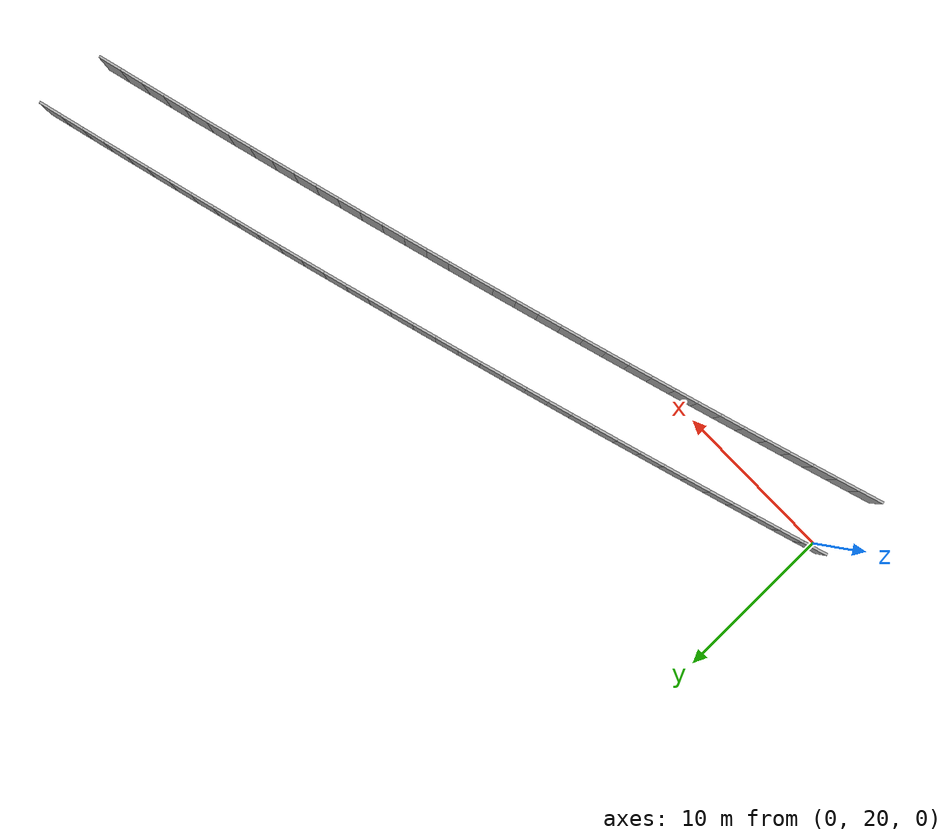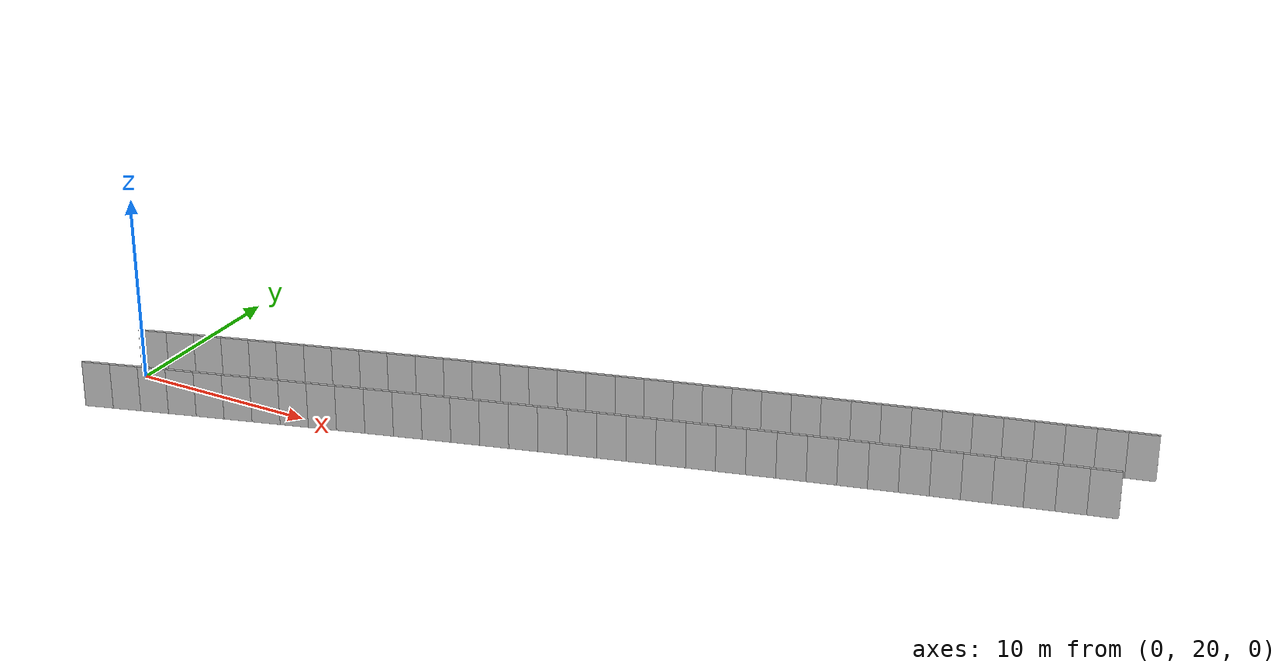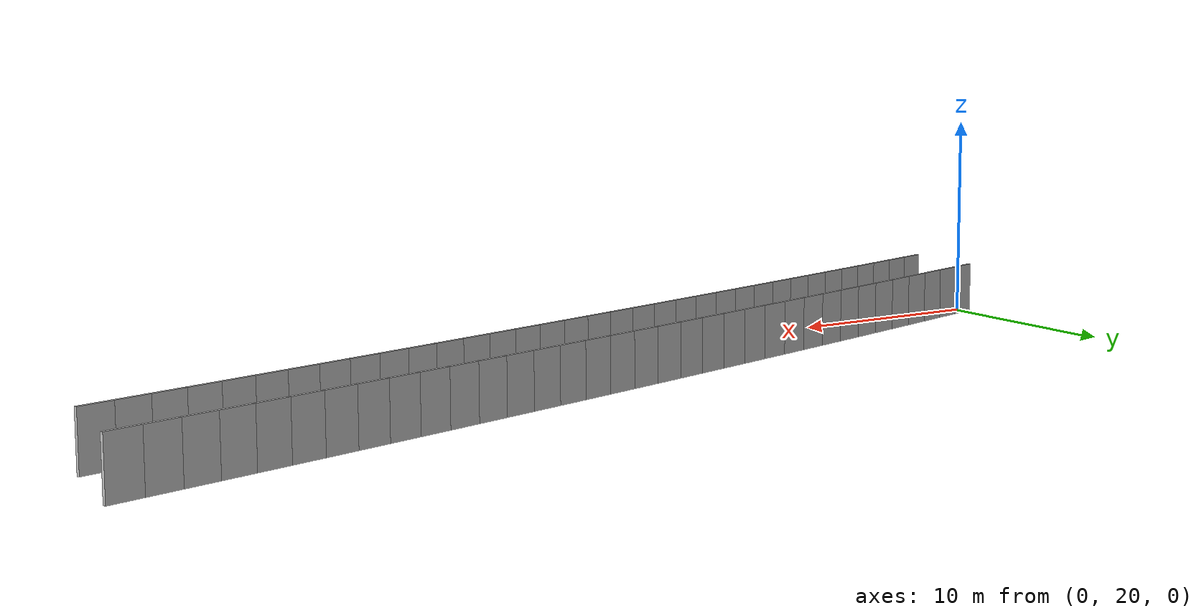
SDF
<?xml version="1.0" ?>
<sdf version="1.6">
  <model name="sps_1846">
    <pose frame="">0 0 0 0 -0 0</pose>
    <static>1</static>
    <self_collide>0</self_collide>
    <allow_auto_disable>0</allow_auto_disable>
    <link name="Wall3021">
      <kinematic>0</kinematic>
      <gravity>1</gravity>
      <self_collide>0</self_collide>
      <collision name="collision">
        <geometry>
          <box>
            <size>1.49661 0.15 2.5</size>
          </box>
        </geometry>
        <pose frame="">0 0 0 0 -0 0</pose>
      </collision>
      <visual name="visual">
        <geometry>
          <box>
            <size>1.49661 0.15 2.5</size>
          </box>
        </geometry>
        <pose frame="">0 0 0 0 -0 0</pose>
        <cast_shadows>1</cast_shadows>
        <transparency>0.0</transparency>
      </visual>
      <pose frame="">49.0014 30.0258 1.25 0 0 -2.89191</pose>
    </link>
    <link name="Wall3022">
      <kinematic>0</kinematic>
      <gravity>1</gravity>
      <self_collide>0</self_collide>
      <collision name="collision">
        <geometry>
          <box>
            <size>1.49638 0.15 2.5</size>
          </box>
        </geometry>
        <pose frame="">0 0 0 0 -0 0</pose>
      </collision>
      <visual name="visual">
        <geometry>
          <box>
            <size>1.49638 0.15 2.5</size>
          </box>
        </geometry>
        <pose frame="">0 0 0 0 -0 0</pose>
        <cast_shadows>1</cast_shadows>
        <transparency>0.0</transparency>
      </visual>
      <pose frame="">47.5516 29.6549 1.25 0 0 -2.89035</pose>
    </link>
    <link name="Wall3023">
      <kinematic>0</kinematic>
      <gravity>1</gravity>
      <self_collide>0</self_collide>
      <collision name="collision">
        <geometry>
          <box>
            <size>1.49662 0.15 2.5</size>
          </box>
        </geometry>
        <pose frame="">0 0 0 0 -0 0</pose>
      </collision>
      <visual name="visual">
        <geometry>
          <box>
            <size>1.49662 0.15 2.5</size>
          </box>
        </geometry>
        <pose frame="">0 0 0 0 -0 0</pose>
        <cast_shadows>1</cast_shadows>
        <transparency>0.0</transparency>
      </visual>
      <pose frame="">46.1023 29.2817 1.25 0 0 -2.88875</pose>
    </link>
    <link name="Wall3024">
      <kinematic>0</kinematic>
      <gravity>1</gravity>
      <self_collide>0</self_collide>
      <collision name="collision">
        <geometry>
          <box>
            <size>1.49634 0.15 2.5</size>
          </box>
        </geometry>
        <pose frame="">0 0 0 0 -0 0</pose>
      </collision>
      <visual name="visual">
        <geometry>
          <box>
            <size>1.49634 0.15 2.5</size>
          </box>
        </geometry>
        <pose frame="">0 0 0 0 -0 0</pose>
        <cast_shadows>1</cast_shadows>
        <transparency>0.0</transparency>
      </visual>
      <pose frame="">44.6537 28.9062 1.25 0 0 -2.88719</pose>
    </link>
    <link name="Wall3025">
      <kinematic>0</kinematic>
      <gravity>1</gravity>
      <self_collide>0</self_collide>
      <collision name="collision">
        <geometry>
          <box>
            <size>1.49661 0.15 2.5</size>
          </box>
        </geometry>
        <pose frame="">0 0 0 0 -0 0</pose>
      </collision>
      <visual name="visual">
        <geometry>
          <box>
            <size>1.49661 0.15 2.5</size>
          </box>
        </geometry>
        <pose frame="">0 0 0 0 -0 0</pose>
        <cast_shadows>1</cast_shadows>
        <transparency>0.0</transparency>
      </visual>
      <pose frame="">43.2057 28.5284 1.25 0 0 -2.88555</pose>
    </link>
    <link name="Wall3026">
      <kinematic>0</kinematic>
      <gravity>1</gravity>
      <self_collide>0</self_collide>
      <collision name="collision">
        <geometry>
          <box>
            <size>1.49656 0.15 2.5</size>
          </box>
        </geometry>
        <pose frame="">0 0 0 0 -0 0</pose>
      </collision>
      <visual name="visual">
        <geometry>
          <box>
            <size>1.49656 0.15 2.5</size>
          </box>
        </geometry>
        <pose frame="">0 0 0 0 -0 0</pose>
        <cast_shadows>1</cast_shadows>
        <transparency>0.0</transparency>
      </visual>
      <pose frame="">41.7582 28.1483 1.25 0 0 -2.88406</pose>
    </link>
    <link name="Wall3027">
      <kinematic>0</kinematic>
      <gravity>1</gravity>
      <self_collide>0</self_collide>
      <collision name="collision">
        <geometry>
          <box>
            <size>1.49659 0.15 2.5</size>
          </box>
        </geometry>
        <pose frame="">0 0 0 0 -0 0</pose>
      </collision>
      <visual name="visual">
        <geometry>
          <box>
            <size>1.49659 0.15 2.5</size>
          </box>
        </geometry>
        <pose frame="">0 0 0 0 -0 0</pose>
        <cast_shadows>1</cast_shadows>
        <transparency>0.0</transparency>
      </visual>
      <pose frame="">40.3113 27.7659 1.25 0 0 -2.88238</pose>
    </link>
    <link name="Wall3028">
      <kinematic>0</kinematic>
      <gravity>1</gravity>
      <self_collide>0</self_collide>
      <collision name="collision">
        <geometry>
          <box>
            <size>1.49639 0.15 2.5</size>
          </box>
        </geometry>
        <pose frame="">0 0 0 0 -0 0</pose>
      </collision>
      <visual name="visual">
        <geometry>
          <box>
            <size>1.49639 0.15 2.5</size>
          </box>
        </geometry>
        <pose frame="">0 0 0 0 -0 0</pose>
        <cast_shadows>1</cast_shadows>
        <transparency>0.0</transparency>
      </visual>
      <pose frame="">38.8651 27.3812 1.25 0 0 -2.88082</pose>
    </link>
    <link name="Wall3029">
      <kinematic>0</kinematic>
      <gravity>1</gravity>
      <self_collide>0</self_collide>
      <collision name="collision">
        <geometry>
          <box>
            <size>1.49655 0.15 2.5</size>
          </box>
        </geometry>
        <pose frame="">0 0 0 0 -0 0</pose>
      </collision>
      <visual name="visual">
        <geometry>
          <box>
            <size>1.49655 0.15 2.5</size>
          </box>
        </geometry>
        <pose frame="">0 0 0 0 -0 0</pose>
        <cast_shadows>1</cast_shadows>
        <transparency>0.0</transparency>
      </visual>
      <pose frame="">37.4195 26.9943 1.25 0 0 -2.87933</pose>
    </link>
    <link name="Wall3030">
      <kinematic>0</kinematic>
      <gravity>1</gravity>
      <self_collide>0</self_collide>
      <collision name="collision">
        <geometry>
          <box>
            <size>1.49641 0.15 2.5</size>
          </box>
        </geometry>
        <pose frame="">0 0 0 0 -0 0</pose>
      </collision>
      <visual name="visual">
        <geometry>
          <box>
            <size>1.49641 0.15 2.5</size>
          </box>
        </geometry>
        <pose frame="">0 0 0 0 -0 0</pose>
        <cast_shadows>1</cast_shadows>
        <transparency>0.0</transparency>
      </visual>
      <pose frame="">35.9746 26.6051 1.25 0 0 -2.87762</pose>
    </link>
    <link name="Wall3031">
      <kinematic>0</kinematic>
      <gravity>1</gravity>
      <self_collide>0</self_collide>
      <collision name="collision">
        <geometry>
          <box>
            <size>1.49644 0.15 2.5</size>
          </box>
        </geometry>
        <pose frame="">0 0 0 0 -0 0</pose>
      </collision>
      <visual name="visual">
        <geometry>
          <box>
            <size>1.49644 0.15 2.5</size>
          </box>
        </geometry>
        <pose frame="">0 0 0 0 -0 0</pose>
        <cast_shadows>1</cast_shadows>
        <transparency>0.0</transparency>
      </visual>
      <pose frame="">34.5303 26.2136 1.25 0 0 -2.87615</pose>
    </link>
    <link name="Wall3032">
      <kinematic>0</kinematic>
      <gravity>1</gravity>
      <self_collide>0</self_collide>
      <collision name="collision">
        <geometry>
          <box>
            <size>1.4965 0.15 2.5</size>
          </box>
        </geometry>
        <pose frame="">0 0 0 0 -0 0</pose>
      </collision>
      <visual name="visual">
        <geometry>
          <box>
            <size>1.4965 0.15 2.5</size>
          </box>
        </geometry>
        <pose frame="">0 0 0 0 -0 0</pose>
        <cast_shadows>1</cast_shadows>
        <transparency>0.0</transparency>
      </visual>
      <pose frame="">33.0865 25.8198 1.25 0 0 -2.87446</pose>
    </link>
    <link name="Wall3033">
      <kinematic>0</kinematic>
      <gravity>1</gravity>
      <self_collide>0</self_collide>
      <collision name="collision">
        <geometry>
          <box>
            <size>1.49672 0.15 2.5</size>
          </box>
        </geometry>
        <pose frame="">0 0 0 0 -0 0</pose>
      </collision>
      <visual name="visual">
        <geometry>
          <box>
            <size>1.49672 0.15 2.5</size>
          </box>
        </geometry>
        <pose frame="">0 0 0 0 -0 0</pose>
        <cast_shadows>1</cast_shadows>
        <transparency>0.0</transparency>
      </visual>
      <pose frame="">31.6433 25.4236 1.25 0 0 -2.87285</pose>
    </link>
    <link name="Wall3034">
      <kinematic>0</kinematic>
      <gravity>1</gravity>
      <self_collide>0</self_collide>
      <collision name="collision">
        <geometry>
          <box>
            <size>1.49654 0.15 2.5</size>
          </box>
        </geometry>
        <pose frame="">0 0 0 0 -0 0</pose>
      </collision>
      <visual name="visual">
        <geometry>
          <box>
            <size>1.49654 0.15 2.5</size>
          </box>
        </geometry>
        <pose frame="">0 0 0 0 -0 0</pose>
        <cast_shadows>1</cast_shadows>
        <transparency>0.0</transparency>
      </visual>
      <pose frame="">30.2007 25.0251 1.25 0 0 -2.8713</pose>
    </link>
    <link name="Wall3035">
      <kinematic>0</kinematic>
      <gravity>1</gravity>
      <self_collide>0</self_collide>
      <collision name="collision">
        <geometry>
          <box>
            <size>1.49636 0.15 2.5</size>
          </box>
        </geometry>
        <pose frame="">0 0 0 0 -0 0</pose>
      </collision>
      <visual name="visual">
        <geometry>
          <box>
            <size>1.49636 0.15 2.5</size>
          </box>
        </geometry>
        <pose frame="">0 0 0 0 -0 0</pose>
        <cast_shadows>1</cast_shadows>
        <transparency>0.0</transparency>
      </visual>
      <pose frame="">28.7589 24.6244 1.25 0 0 -2.86974</pose>
    </link>
    <link name="Wall3036">
      <kinematic>0</kinematic>
      <gravity>1</gravity>
      <self_collide>0</self_collide>
      <collision name="collision">
        <geometry>
          <box>
            <size>1.49649 0.15 2.5</size>
          </box>
        </geometry>
        <pose frame="">0 0 0 0 -0 0</pose>
      </collision>
      <visual name="visual">
        <geometry>
          <box>
            <size>1.49649 0.15 2.5</size>
          </box>
        </geometry>
        <pose frame="">0 0 0 0 -0 0</pose>
        <cast_shadows>1</cast_shadows>
        <transparency>0.0</transparency>
      </visual>
      <pose frame="">27.3177 24.2216 1.25 0 0 -2.86837</pose>
    </link>
    <link name="Wall3037">
      <kinematic>0</kinematic>
      <gravity>1</gravity>
      <self_collide>0</self_collide>
      <collision name="collision">
        <geometry>
          <box>
            <size>1.49642 0.15 2.5</size>
          </box>
        </geometry>
        <pose frame="">0 0 0 0 -0 0</pose>
      </collision>
      <visual name="visual">
        <geometry>
          <box>
            <size>1.49642 0.15 2.5</size>
          </box>
        </geometry>
        <pose frame="">0 0 0 0 -0 0</pose>
        <cast_shadows>1</cast_shadows>
        <transparency>0.0</transparency>
      </visual>
      <pose frame="">25.8772 23.8165 1.25 0 0 -2.86658</pose>
    </link>
    <link name="Wall3038">
      <kinematic>0</kinematic>
      <gravity>1</gravity>
      <self_collide>0</self_collide>
      <collision name="collision">
        <geometry>
          <box>
            <size>1.49651 0.15 2.5</size>
          </box>
        </geometry>
        <pose frame="">0 0 0 0 -0 0</pose>
      </collision>
      <visual name="visual">
        <geometry>
          <box>
            <size>1.49651 0.15 2.5</size>
          </box>
        </geometry>
        <pose frame="">0 0 0 0 -0 0</pose>
        <cast_shadows>1</cast_shadows>
        <transparency>0.0</transparency>
      </visual>
      <pose frame="">24.4372 23.409 1.25 0 0 -2.86502</pose>
    </link>
    <link name="Wall3039">
      <kinematic>0</kinematic>
      <gravity>1</gravity>
      <self_collide>0</self_collide>
      <collision name="collision">
        <geometry>
          <box>
            <size>1.4965 0.15 2.5</size>
          </box>
        </geometry>
        <pose frame="">0 0 0 0 -0 0</pose>
      </collision>
      <visual name="visual">
        <geometry>
          <box>
            <size>1.4965 0.15 2.5</size>
          </box>
        </geometry>
        <pose frame="">0 0 0 0 -0 0</pose>
        <cast_shadows>1</cast_shadows>
        <transparency>0.0</transparency>
      </visual>
      <pose frame="">22.9979 22.9992 1.25 0 0 -2.86341</pose>
    </link>
    <link name="Wall3040">
      <kinematic>0</kinematic>
      <gravity>1</gravity>
      <self_collide>0</self_collide>
      <collision name="collision">
        <geometry>
          <box>
            <size>1.49641 0.15 2.5</size>
          </box>
        </geometry>
        <pose frame="">0 0 0 0 -0 0</pose>
      </collision>
      <visual name="visual">
        <geometry>
          <box>
            <size>1.49641 0.15 2.5</size>
          </box>
        </geometry>
        <pose frame="">0 0 0 0 -0 0</pose>
        <cast_shadows>1</cast_shadows>
        <transparency>0.0</transparency>
      </visual>
      <pose frame="">21.5593 22.5871 1.25 0 0 -2.86183</pose>
    </link>
    <link name="Wall3041">
      <kinematic>0</kinematic>
      <gravity>1</gravity>
      <self_collide>0</self_collide>
      <collision name="collision">
        <geometry>
          <box>
            <size>1.49666 0.15 2.5</size>
          </box>
        </geometry>
        <pose frame="">0 0 0 0 -0 0</pose>
      </collision>
      <visual name="visual">
        <geometry>
          <box>
            <size>1.49666 0.15 2.5</size>
          </box>
        </geometry>
        <pose frame="">0 0 0 0 -0 0</pose>
        <cast_shadows>1</cast_shadows>
        <transparency>0.0</transparency>
      </visual>
      <pose frame="">20.1213 22.1727 1.25 0 0 -2.86022</pose>
    </link>
    <link name="Wall3042">
      <kinematic>0</kinematic>
      <gravity>1</gravity>
      <self_collide>0</self_collide>
      <collision name="collision">
        <geometry>
          <box>
            <size>1.49647 0.15 2.5</size>
          </box>
        </geometry>
        <pose frame="">0 0 0 0 -0 0</pose>
      </collision>
      <visual name="visual">
        <geometry>
          <box>
            <size>1.49647 0.15 2.5</size>
          </box>
        </geometry>
        <pose frame="">0 0 0 0 -0 0</pose>
        <cast_shadows>1</cast_shadows>
        <transparency>0.0</transparency>
      </visual>
      <pose frame="">18.684 21.756 1.25 0 0 -2.85861</pose>
    </link>
    <link name="Wall3043">
      <kinematic>0</kinematic>
      <gravity>1</gravity>
      <self_collide>0</self_collide>
      <collision name="collision">
        <geometry>
          <box>
            <size>1.49642 0.15 2.5</size>
          </box>
        </geometry>
        <pose frame="">0 0 0 0 -0 0</pose>
      </collision>
      <visual name="visual">
        <geometry>
          <box>
            <size>1.49642 0.15 2.5</size>
          </box>
        </geometry>
        <pose frame="">0 0 0 0 -0 0</pose>
        <cast_shadows>1</cast_shadows>
        <transparency>0.0</transparency>
      </visual>
      <pose frame="">17.2474 21.337 1.25 0 0 -2.85698</pose>
    </link>
    <link name="Wall3044">
      <kinematic>0</kinematic>
      <gravity>1</gravity>
      <self_collide>0</self_collide>
      <collision name="collision">
        <geometry>
          <box>
            <size>1.49664 0.15 2.5</size>
          </box>
        </geometry>
        <pose frame="">0 0 0 0 -0 0</pose>
      </collision>
      <visual name="visual">
        <geometry>
          <box>
            <size>1.49664 0.15 2.5</size>
          </box>
        </geometry>
        <pose frame="">0 0 0 0 -0 0</pose>
        <cast_shadows>1</cast_shadows>
        <transparency>0.0</transparency>
      </visual>
      <pose frame="">15.8114 20.9157 1.25 0 0 -2.85546</pose>
    </link>
    <link name="Wall3045">
      <kinematic>0</kinematic>
      <gravity>1</gravity>
      <self_collide>0</self_collide>
      <collision name="collision">
        <geometry>
          <box>
            <size>1.49649 0.15 2.5</size>
          </box>
        </geometry>
        <pose frame="">0 0 0 0 -0 0</pose>
      </collision>
      <visual name="visual">
        <geometry>
          <box>
            <size>1.49649 0.15 2.5</size>
          </box>
        </geometry>
        <pose frame="">0 0 0 0 -0 0</pose>
        <cast_shadows>1</cast_shadows>
        <transparency>0.0</transparency>
      </visual>
      <pose frame="">14.376 20.4922 1.25 0 0 -2.85394</pose>
    </link>
    <link name="Wall3046">
      <kinematic>0</kinematic>
      <gravity>1</gravity>
      <self_collide>0</self_collide>
      <collision name="collision">
        <geometry>
          <box>
            <size>1.49637 0.15 2.5</size>
          </box>
        </geometry>
        <pose frame="">0 0 0 0 -0 0</pose>
      </collision>
      <visual name="visual">
        <geometry>
          <box>
            <size>1.49637 0.15 2.5</size>
          </box>
        </geometry>
        <pose frame="">0 0 0 0 -0 0</pose>
        <cast_shadows>1</cast_shadows>
        <transparency>0.0</transparency>
      </visual>
      <pose frame="">12.9414 20.0665 1.25 0 0 -2.85234</pose>
    </link>
    <link name="Wall3047">
      <kinematic>0</kinematic>
      <gravity>1</gravity>
      <self_collide>0</self_collide>
      <collision name="collision">
        <geometry>
          <box>
            <size>1.49641 0.15 2.5</size>
          </box>
        </geometry>
        <pose frame="">0 0 0 0 -0 0</pose>
      </collision>
      <visual name="visual">
        <geometry>
          <box>
            <size>1.49641 0.15 2.5</size>
          </box>
        </geometry>
        <pose frame="">0 0 0 0 -0 0</pose>
        <cast_shadows>1</cast_shadows>
        <transparency>0.0</transparency>
      </visual>
      <pose frame="">11.5075 19.6386 1.25 0 0 -2.85082</pose>
    </link>
    <link name="Wall3048">
      <kinematic>0</kinematic>
      <gravity>1</gravity>
      <self_collide>0</self_collide>
      <collision name="collision">
        <geometry>
          <box>
            <size>1.49662 0.15 2.5</size>
          </box>
        </geometry>
        <pose frame="">0 0 0 0 -0 0</pose>
      </collision>
      <visual name="visual">
        <geometry>
          <box>
            <size>1.49662 0.15 2.5</size>
          </box>
        </geometry>
        <pose frame="">0 0 0 0 -0 0</pose>
        <cast_shadows>1</cast_shadows>
        <transparency>0.0</transparency>
      </visual>
      <pose frame="">10.0741 19.2083 1.25 0 0 -2.84907</pose>
    </link>
    <link name="Wall3049">
      <kinematic>0</kinematic>
      <gravity>1</gravity>
      <self_collide>0</self_collide>
      <collision name="collision">
        <geometry>
          <box>
            <size>1.49639 0.15 2.5</size>
          </box>
        </geometry>
        <pose frame="">0 0 0 0 -0 0</pose>
      </collision>
      <visual name="visual">
        <geometry>
          <box>
            <size>1.49639 0.15 2.5</size>
          </box>
        </geometry>
        <pose frame="">0 0 0 0 -0 0</pose>
        <cast_shadows>1</cast_shadows>
        <transparency>0.0</transparency>
      </visual>
      <pose frame="">8.64153 18.7757 1.25 0 0 -2.84762</pose>
    </link>
    <link name="Wall3050">
      <kinematic>0</kinematic>
      <gravity>1</gravity>
      <self_collide>0</self_collide>
      <collision name="collision">
        <geometry>
          <box>
            <size>1.49651 0.15 2.5</size>
          </box>
        </geometry>
        <pose frame="">0 0 0 0 -0 0</pose>
      </collision>
      <visual name="visual">
        <geometry>
          <box>
            <size>1.49651 0.15 2.5</size>
          </box>
        </geometry>
        <pose frame="">0 0 0 0 -0 0</pose>
        <cast_shadows>1</cast_shadows>
        <transparency>0.0</transparency>
      </visual>
      <pose frame="">7.20965 18.3409 1.25 0 0 -2.84594</pose>
    </link>
    <link name="Wall3051">
      <kinematic>0</kinematic>
      <gravity>1</gravity>
      <self_collide>0</self_collide>
      <collision name="collision">
        <geometry>
          <box>
            <size>1.49661 0.15 2.5</size>
          </box>
        </geometry>
        <pose frame="">0 0 0 0 -0 0</pose>
      </collision>
      <visual name="visual">
        <geometry>
          <box>
            <size>1.49661 0.15 2.5</size>
          </box>
        </geometry>
        <pose frame="">0 0 0 0 -0 0</pose>
        <cast_shadows>1</cast_shadows>
        <transparency>0.0</transparency>
      </visual>
      <pose frame="">5.77834 17.9038 1.25 0 0 -2.84446</pose>
    </link>
    <link name="Wall3052">
      <kinematic>0</kinematic>
      <gravity>1</gravity>
      <self_collide>0</self_collide>
      <collision name="collision">
        <geometry>
          <box>
            <size>1.49638 0.15 2.5</size>
          </box>
        </geometry>
        <pose frame="">0 0 0 0 -0 0</pose>
      </collision>
      <visual name="visual">
        <geometry>
          <box>
            <size>1.49638 0.15 2.5</size>
          </box>
        </geometry>
        <pose frame="">0 0 0 0 -0 0</pose>
        <cast_shadows>1</cast_shadows>
        <transparency>0.0</transparency>
      </visual>
      <pose frame="">4.34774 17.4646 1.25 0 0 -2.84301</pose>
    </link>
    <link name="Wall3053">
      <kinematic>0</kinematic>
      <gravity>1</gravity>
      <self_collide>0</self_collide>
      <collision name="collision">
        <geometry>
          <box>
            <size>1.49658 0.15 2.5</size>
          </box>
        </geometry>
        <pose frame="">0 0 0 0 -0 0</pose>
      </collision>
      <visual name="visual">
        <geometry>
          <box>
            <size>1.49658 0.15 2.5</size>
          </box>
        </geometry>
        <pose frame="">0 0 0 0 -0 0</pose>
        <cast_shadows>1</cast_shadows>
        <transparency>0.0</transparency>
      </visual>
      <pose frame="">2.91787 17.0231 1.25 0 0 -2.84121</pose>
    </link>
    <link name="Wall3054">
      <kinematic>0</kinematic>
      <gravity>1</gravity>
      <self_collide>0</self_collide>
      <collision name="collision">
        <geometry>
          <box>
            <size>1.49653 0.15 2.5</size>
          </box>
        </geometry>
        <pose frame="">0 0 0 0 -0 0</pose>
      </collision>
      <visual name="visual">
        <geometry>
          <box>
            <size>1.49653 0.15 2.5</size>
          </box>
        </geometry>
        <pose frame="">0 0 0 0 -0 0</pose>
        <cast_shadows>1</cast_shadows>
        <transparency>0.0</transparency>
      </visual>
      <pose frame="">1.48867 16.5792 1.25 0 0 -2.83967</pose>
    </link>
    <link name="Wall3055">
      <kinematic>0</kinematic>
      <gravity>1</gravity>
      <self_collide>0</self_collide>
      <collision name="collision">
        <geometry>
          <box>
            <size>1.49642 0.15 2.5</size>
          </box>
        </geometry>
        <pose frame="">0 0 0 0 -0 0</pose>
      </collision>
      <visual name="visual">
        <geometry>
          <box>
            <size>1.49642 0.15 2.5</size>
          </box>
        </geometry>
        <pose frame="">0 0 0 0 -0 0</pose>
        <cast_shadows>1</cast_shadows>
        <transparency>0.0</transparency>
      </visual>
      <pose frame="">0.0602639 16.133 1.25 0 0 -2.83798</pose>
    </link>
    <link name="Wall5631">
      <kinematic>0</kinematic>
      <gravity>1</gravity>
      <self_collide>0</self_collide>
      <collision name="collision">
        <geometry>
          <box>
            <size>1.50299 0.15 2.5</size>
          </box>
        </geometry>
        <pose frame="">0 0 0 0 -0 0</pose>
      </collision>
      <visual name="visual">
        <geometry>
          <box>
            <size>1.50299 0.15 2.5</size>
          </box>
        </geometry>
        <pose frame="">0 0 0 0 -0 0</pose>
        <cast_shadows>1</cast_shadows>
        <transparency>0.0</transparency>
      </visual>
      <pose frame="">49.4292 34.4057 1.25 0 0 -2.89366</pose>
    </link>
    <link name="Wall5632">
      <kinematic>0</kinematic>
      <gravity>1</gravity>
      <self_collide>0</self_collide>
      <collision name="collision">
        <geometry>
          <box>
            <size>1.50315 0.15 2.5</size>
          </box>
        </geometry>
        <pose frame="">0 0 0 0 -0 0</pose>
      </collision>
      <visual name="visual">
        <geometry>
          <box>
            <size>1.50315 0.15 2.5</size>
          </box>
        </geometry>
        <pose frame="">0 0 0 0 -0 0</pose>
        <cast_shadows>1</cast_shadows>
        <transparency>0.0</transparency>
      </visual>
      <pose frame="">47.9723 34.0357 1.25 0 0 -2.89209</pose>
    </link>
    <link name="Wall5633">
      <kinematic>0</kinematic>
      <gravity>1</gravity>
      <self_collide>0</self_collide>
      <collision name="collision">
        <geometry>
          <box>
            <size>1.50304 0.15 2.5</size>
          </box>
        </geometry>
        <pose frame="">0 0 0 0 -0 0</pose>
      </collision>
      <visual name="visual">
        <geometry>
          <box>
            <size>1.50304 0.15 2.5</size>
          </box>
        </geometry>
        <pose frame="">0 0 0 0 -0 0</pose>
        <cast_shadows>1</cast_shadows>
        <transparency>0.0</transparency>
      </visual>
      <pose frame="">46.5161 33.6632 1.25 0 0 -2.89023</pose>
    </link>
    <link name="Wall5634">
      <kinematic>0</kinematic>
      <gravity>1</gravity>
      <self_collide>0</self_collide>
      <collision name="collision">
        <geometry>
          <box>
            <size>1.50299 0.15 2.5</size>
          </box>
        </geometry>
        <pose frame="">0 0 0 0 -0 0</pose>
      </collision>
      <visual name="visual">
        <geometry>
          <box>
            <size>1.50299 0.15 2.5</size>
          </box>
        </geometry>
        <pose frame="">0 0 0 0 -0 0</pose>
        <cast_shadows>1</cast_shadows>
        <transparency>0.0</transparency>
      </visual>
      <pose frame="">45.0606 33.2883 1.25 0 0 -2.88875</pose>
    </link>
    <link name="Wall5635">
      <kinematic>0</kinematic>
      <gravity>1</gravity>
      <self_collide>0</self_collide>
      <collision name="collision">
        <geometry>
          <box>
            <size>1.50318 0.15 2.5</size>
          </box>
        </geometry>
        <pose frame="">0 0 0 0 -0 0</pose>
      </collision>
      <visual name="visual">
        <geometry>
          <box>
            <size>1.50318 0.15 2.5</size>
          </box>
        </geometry>
        <pose frame="">0 0 0 0 -0 0</pose>
        <cast_shadows>1</cast_shadows>
        <transparency>0.0</transparency>
      </visual>
      <pose frame="">43.6056 32.9111 1.25 0 0 -2.88711</pose>
    </link>
    <link name="Wall5636">
      <kinematic>0</kinematic>
      <gravity>1</gravity>
      <self_collide>0</self_collide>
      <collision name="collision">
        <geometry>
          <box>
            <size>1.50319 0.15 2.5</size>
          </box>
        </geometry>
        <pose frame="">0 0 0 0 -0 0</pose>
      </collision>
      <visual name="visual">
        <geometry>
          <box>
            <size>1.50319 0.15 2.5</size>
          </box>
        </geometry>
        <pose frame="">0 0 0 0 -0 0</pose>
        <cast_shadows>1</cast_shadows>
        <transparency>0.0</transparency>
      </visual>
      <pose frame="">42.1511 32.5316 1.25 0 0 -2.88564</pose>
    </link>
    <link name="Wall5637">
      <kinematic>0</kinematic>
      <gravity>1</gravity>
      <self_collide>0</self_collide>
      <collision name="collision">
        <geometry>
          <box>
            <size>1.503 0.15 2.5</size>
          </box>
        </geometry>
        <pose frame="">0 0 0 0 -0 0</pose>
      </collision>
      <visual name="visual">
        <geometry>
          <box>
            <size>1.503 0.15 2.5</size>
          </box>
        </geometry>
        <pose frame="">0 0 0 0 -0 0</pose>
        <cast_shadows>1</cast_shadows>
        <transparency>0.0</transparency>
      </visual>
      <pose frame="">40.6973 32.1498 1.25 0 0 -2.88389</pose>
    </link>
    <link name="Wall5638">
      <kinematic>0</kinematic>
      <gravity>1</gravity>
      <self_collide>0</self_collide>
      <collision name="collision">
        <geometry>
          <box>
            <size>1.50302 0.15 2.5</size>
          </box>
        </geometry>
        <pose frame="">0 0 0 0 -0 0</pose>
      </collision>
      <visual name="visual">
        <geometry>
          <box>
            <size>1.50302 0.15 2.5</size>
          </box>
        </geometry>
        <pose frame="">0 0 0 0 -0 0</pose>
        <cast_shadows>1</cast_shadows>
        <transparency>0.0</transparency>
      </visual>
      <pose frame="">39.2443 31.7657 1.25 0 0 -2.88242</pose>
    </link>
    <link name="Wall5639">
      <kinematic>0</kinematic>
      <gravity>1</gravity>
      <self_collide>0</self_collide>
      <collision name="collision">
        <geometry>
          <box>
            <size>1.50304 0.15 2.5</size>
          </box>
        </geometry>
        <pose frame="">0 0 0 0 -0 0</pose>
      </collision>
      <visual name="visual">
        <geometry>
          <box>
            <size>1.50304 0.15 2.5</size>
          </box>
        </geometry>
        <pose frame="">0 0 0 0 -0 0</pose>
        <cast_shadows>1</cast_shadows>
        <transparency>0.0</transparency>
      </visual>
      <pose frame="">37.7917 31.3793 1.25 0 0 -2.88079</pose>
    </link>
    <link name="Wall5640">
      <kinematic>0</kinematic>
      <gravity>1</gravity>
      <self_collide>0</self_collide>
      <collision name="collision">
        <geometry>
          <box>
            <size>1.50303 0.15 2.5</size>
          </box>
        </geometry>
        <pose frame="">0 0 0 0 -0 0</pose>
      </collision>
      <visual name="visual">
        <geometry>
          <box>
            <size>1.50303 0.15 2.5</size>
          </box>
        </geometry>
        <pose frame="">0 0 0 0 -0 0</pose>
        <cast_shadows>1</cast_shadows>
        <transparency>0.0</transparency>
      </visual>
      <pose frame="">36.3398 30.9906 1.25 0 0 -2.87923</pose>
    </link>
    <link name="Wall5641">
      <kinematic>0</kinematic>
      <gravity>1</gravity>
      <self_collide>0</self_collide>
      <collision name="collision">
        <geometry>
          <box>
            <size>1.50322 0.15 2.5</size>
          </box>
        </geometry>
        <pose frame="">0 0 0 0 -0 0</pose>
      </collision>
      <visual name="visual">
        <geometry>
          <box>
            <size>1.50322 0.15 2.5</size>
          </box>
        </geometry>
        <pose frame="">0 0 0 0 -0 0</pose>
        <cast_shadows>1</cast_shadows>
        <transparency>0.0</transparency>
      </visual>
      <pose frame="">34.8884 30.5996 1.25 0 0 -2.87767</pose>
    </link>
    <link name="Wall5642">
      <kinematic>0</kinematic>
      <gravity>1</gravity>
      <self_collide>0</self_collide>
      <collision name="collision">
        <geometry>
          <box>
            <size>1.50305 0.15 2.5</size>
          </box>
        </geometry>
        <pose frame="">0 0 0 0 -0 0</pose>
      </collision>
      <visual name="visual">
        <geometry>
          <box>
            <size>1.50305 0.15 2.5</size>
          </box>
        </geometry>
        <pose frame="">0 0 0 0 -0 0</pose>
        <cast_shadows>1</cast_shadows>
        <transparency>0.0</transparency>
      </visual>
      <pose frame="">33.4377 30.2063 1.25 0 0 -2.87608</pose>
    </link>
    <link name="Wall5643">
      <kinematic>0</kinematic>
      <gravity>1</gravity>
      <self_collide>0</self_collide>
      <collision name="collision">
        <geometry>
          <box>
            <size>1.50315 0.15 2.5</size>
          </box>
        </geometry>
        <pose frame="">0 0 0 0 -0 0</pose>
      </collision>
      <visual name="visual">
        <geometry>
          <box>
            <size>1.50315 0.15 2.5</size>
          </box>
        </geometry>
        <pose frame="">0 0 0 0 -0 0</pose>
        <cast_shadows>1</cast_shadows>
        <transparency>0.0</transparency>
      </visual>
      <pose frame="">31.9876 29.8107 1.25 0 0 -2.87445</pose>
    </link>
    <link name="Wall5644">
      <kinematic>0</kinematic>
      <gravity>1</gravity>
      <self_collide>0</self_collide>
      <collision name="collision">
        <geometry>
          <box>
            <size>1.50315 0.15 2.5</size>
          </box>
        </geometry>
        <pose frame="">0 0 0 0 -0 0</pose>
      </collision>
      <visual name="visual">
        <geometry>
          <box>
            <size>1.50315 0.15 2.5</size>
          </box>
        </geometry>
        <pose frame="">0 0 0 0 -0 0</pose>
        <cast_shadows>1</cast_shadows>
        <transparency>0.0</transparency>
      </visual>
      <pose frame="">30.538 29.4128 1.25 0 0 -2.8729</pose>
    </link>
    <link name="Wall5645">
      <kinematic>0</kinematic>
      <gravity>1</gravity>
      <self_collide>0</self_collide>
      <collision name="collision">
        <geometry>
          <box>
            <size>1.5029 0.15 2.5</size>
          </box>
        </geometry>
        <pose frame="">0 0 0 0 -0 0</pose>
      </collision>
      <visual name="visual">
        <geometry>
          <box>
            <size>1.5029 0.15 2.5</size>
          </box>
        </geometry>
        <pose frame="">0 0 0 0 -0 0</pose>
        <cast_shadows>1</cast_shadows>
        <transparency>0.0</transparency>
      </visual>
      <pose frame="">29.0893 29.0127 1.25 0 0 -2.87138</pose>
    </link>
    <link name="Wall5646">
      <kinematic>0</kinematic>
      <gravity>1</gravity>
      <self_collide>0</self_collide>
      <collision name="collision">
        <geometry>
          <box>
            <size>1.50309 0.15 2.5</size>
          </box>
        </geometry>
        <pose frame="">0 0 0 0 -0 0</pose>
      </collision>
      <visual name="visual">
        <geometry>
          <box>
            <size>1.50309 0.15 2.5</size>
          </box>
        </geometry>
        <pose frame="">0 0 0 0 -0 0</pose>
        <cast_shadows>1</cast_shadows>
        <transparency>0.0</transparency>
      </visual>
      <pose frame="">27.6411 28.6105 1.25 0 0 -2.87002</pose>
    </link>
    <link name="Wall5647">
      <kinematic>0</kinematic>
      <gravity>1</gravity>
      <self_collide>0</self_collide>
      <collision name="collision">
        <geometry>
          <box>
            <size>1.50308 0.15 2.5</size>
          </box>
        </geometry>
        <pose frame="">0 0 0 0 -0 0</pose>
      </collision>
      <visual name="visual">
        <geometry>
          <box>
            <size>1.50308 0.15 2.5</size>
          </box>
        </geometry>
        <pose frame="">0 0 0 0 -0 0</pose>
        <cast_shadows>1</cast_shadows>
        <transparency>0.0</transparency>
      </visual>
      <pose frame="">26.1935 28.2059 1.25 0 0 -2.86808</pose>
    </link>
    <link name="Wall5648">
      <kinematic>0</kinematic>
      <gravity>1</gravity>
      <self_collide>0</self_collide>
      <collision name="collision">
        <geometry>
          <box>
            <size>1.50309 0.15 2.5</size>
          </box>
        </geometry>
        <pose frame="">0 0 0 0 -0 0</pose>
      </collision>
      <visual name="visual">
        <geometry>
          <box>
            <size>1.50309 0.15 2.5</size>
          </box>
        </geometry>
        <pose frame="">0 0 0 0 -0 0</pose>
        <cast_shadows>1</cast_shadows>
        <transparency>0.0</transparency>
      </visual>
      <pose frame="">24.7466 27.7988 1.25 0 0 -2.86656</pose>
    </link>
    <link name="Wall5649">
      <kinematic>0</kinematic>
      <gravity>1</gravity>
      <self_collide>0</self_collide>
      <collision name="collision">
        <geometry>
          <box>
            <size>1.50315 0.15 2.5</size>
          </box>
        </geometry>
        <pose frame="">0 0 0 0 -0 0</pose>
      </collision>
      <visual name="visual">
        <geometry>
          <box>
            <size>1.50315 0.15 2.5</size>
          </box>
        </geometry>
        <pose frame="">0 0 0 0 -0 0</pose>
        <cast_shadows>1</cast_shadows>
        <transparency>0.0</transparency>
      </visual>
      <pose frame="">23.3003 27.3895 1.25 0 0 -2.86506</pose>
    </link>
    <link name="Wall5650">
      <kinematic>0</kinematic>
      <gravity>1</gravity>
      <self_collide>0</self_collide>
      <collision name="collision">
        <geometry>
          <box>
            <size>1.50298 0.15 2.5</size>
          </box>
        </geometry>
        <pose frame="">0 0 0 0 -0 0</pose>
      </collision>
      <visual name="visual">
        <geometry>
          <box>
            <size>1.50298 0.15 2.5</size>
          </box>
        </geometry>
        <pose frame="">0 0 0 0 -0 0</pose>
        <cast_shadows>1</cast_shadows>
        <transparency>0.0</transparency>
      </visual>
      <pose frame="">21.8546 26.9779 1.25 0 0 -2.86338</pose>
    </link>
    <link name="Wall5651">
      <kinematic>0</kinematic>
      <gravity>1</gravity>
      <self_collide>0</self_collide>
      <collision name="collision">
        <geometry>
          <box>
            <size>1.50307 0.15 2.5</size>
          </box>
        </geometry>
        <pose frame="">0 0 0 0 -0 0</pose>
      </collision>
      <visual name="visual">
        <geometry>
          <box>
            <size>1.50307 0.15 2.5</size>
          </box>
        </geometry>
        <pose frame="">0 0 0 0 -0 0</pose>
        <cast_shadows>1</cast_shadows>
        <transparency>0.0</transparency>
      </visual>
      <pose frame="">20.4098 26.5639 1.25 0 0 -2.8617</pose>
    </link>
    <link name="Wall5652">
      <kinematic>0</kinematic>
      <gravity>1</gravity>
      <self_collide>0</self_collide>
      <collision name="collision">
        <geometry>
          <box>
            <size>1.50313 0.15 2.5</size>
          </box>
        </geometry>
        <pose frame="">0 0 0 0 -0 0</pose>
      </collision>
      <visual name="visual">
        <geometry>
          <box>
            <size>1.50313 0.15 2.5</size>
          </box>
        </geometry>
        <pose frame="">0 0 0 0 -0 0</pose>
        <cast_shadows>1</cast_shadows>
        <transparency>0.0</transparency>
      </visual>
      <pose frame="">18.9654 26.1476 1.25 0 0 -2.86024</pose>
    </link>
    <link name="Wall5653">
      <kinematic>0</kinematic>
      <gravity>1</gravity>
      <self_collide>0</self_collide>
      <collision name="collision">
        <geometry>
          <box>
            <size>1.50312 0.15 2.5</size>
          </box>
        </geometry>
        <pose frame="">0 0 0 0 -0 0</pose>
      </collision>
      <visual name="visual">
        <geometry>
          <box>
            <size>1.50312 0.15 2.5</size>
          </box>
        </geometry>
        <pose frame="">0 0 0 0 -0 0</pose>
        <cast_shadows>1</cast_shadows>
        <transparency>0.0</transparency>
      </visual>
      <pose frame="">17.5218 25.7291 1.25 0 0 -2.85867</pose>
    </link>
    <link name="Wall5654">
      <kinematic>0</kinematic>
      <gravity>1</gravity>
      <self_collide>0</self_collide>
      <collision name="collision">
        <geometry>
          <box>
            <size>1.50308 0.15 2.5</size>
          </box>
        </geometry>
        <pose frame="">0 0 0 0 -0 0</pose>
      </collision>
      <visual name="visual">
        <geometry>
          <box>
            <size>1.50308 0.15 2.5</size>
          </box>
        </geometry>
        <pose frame="">0 0 0 0 -0 0</pose>
        <cast_shadows>1</cast_shadows>
        <transparency>0.0</transparency>
      </visual>
      <pose frame="">16.0788 25.3083 1.25 0 0 -2.85701</pose>
    </link>
    <link name="Wall5655">
      <kinematic>0</kinematic>
      <gravity>1</gravity>
      <self_collide>0</self_collide>
      <collision name="collision">
        <geometry>
          <box>
            <size>1.50311 0.15 2.5</size>
          </box>
        </geometry>
        <pose frame="">0 0 0 0 -0 0</pose>
      </collision>
      <visual name="visual">
        <geometry>
          <box>
            <size>1.50311 0.15 2.5</size>
          </box>
        </geometry>
        <pose frame="">0 0 0 0 -0 0</pose>
        <cast_shadows>1</cast_shadows>
        <transparency>0.0</transparency>
      </visual>
      <pose frame="">14.6364 24.8852 1.25 0 0 -2.8555</pose>
    </link>
    <link name="Wall5656">
      <kinematic>0</kinematic>
      <gravity>1</gravity>
      <self_collide>0</self_collide>
      <collision name="collision">
        <geometry>
          <box>
            <size>1.50309 0.15 2.5</size>
          </box>
        </geometry>
        <pose frame="">0 0 0 0 -0 0</pose>
      </collision>
      <visual name="visual">
        <geometry>
          <box>
            <size>1.50309 0.15 2.5</size>
          </box>
        </geometry>
        <pose frame="">0 0 0 0 -0 0</pose>
        <cast_shadows>1</cast_shadows>
        <transparency>0.0</transparency>
      </visual>
      <pose frame="">13.1948 24.4599 1.25 0 0 -2.85397</pose>
    </link>
    <link name="Wall5657">
      <kinematic>0</kinematic>
      <gravity>1</gravity>
      <self_collide>0</self_collide>
      <collision name="collision">
        <geometry>
          <box>
            <size>1.50308 0.15 2.5</size>
          </box>
        </geometry>
        <pose frame="">0 0 0 0 -0 0</pose>
      </collision>
      <visual name="visual">
        <geometry>
          <box>
            <size>1.50308 0.15 2.5</size>
          </box>
        </geometry>
        <pose frame="">0 0 0 0 -0 0</pose>
        <cast_shadows>1</cast_shadows>
        <transparency>0.0</transparency>
      </visual>
      <pose frame="">11.7538 24.0323 1.25 0 0 -2.85227</pose>
    </link>
    <link name="Wall5658">
      <kinematic>0</kinematic>
      <gravity>1</gravity>
      <self_collide>0</self_collide>
      <collision name="collision">
        <geometry>
          <box>
            <size>1.50301 0.15 2.5</size>
          </box>
        </geometry>
        <pose frame="">0 0 0 0 -0 0</pose>
      </collision>
      <visual name="visual">
        <geometry>
          <box>
            <size>1.50301 0.15 2.5</size>
          </box>
        </geometry>
        <pose frame="">0 0 0 0 -0 0</pose>
        <cast_shadows>1</cast_shadows>
        <transparency>0.0</transparency>
      </visual>
      <pose frame="">10.3136 23.6023 1.25 0 0 -2.8506</pose>
    </link>
    <link name="Wall5659">
      <kinematic>0</kinematic>
      <gravity>1</gravity>
      <self_collide>0</self_collide>
      <collision name="collision">
        <geometry>
          <box>
            <size>1.50316 0.15 2.5</size>
          </box>
        </geometry>
        <pose frame="">0 0 0 0 -0 0</pose>
      </collision>
      <visual name="visual">
        <geometry>
          <box>
            <size>1.50316 0.15 2.5</size>
          </box>
        </geometry>
        <pose frame="">0 0 0 0 -0 0</pose>
        <cast_shadows>1</cast_shadows>
        <transparency>0.0</transparency>
      </visual>
      <pose frame="">8.87395 23.1701 1.25 0 0 -2.84928</pose>
    </link>
    <link name="Wall5660">
      <kinematic>0</kinematic>
      <gravity>1</gravity>
      <self_collide>0</self_collide>
      <collision name="collision">
        <geometry>
          <box>
            <size>1.5031 0.15 2.5</size>
          </box>
        </geometry>
        <pose frame="">0 0 0 0 -0 0</pose>
      </collision>
      <visual name="visual">
        <geometry>
          <box>
            <size>1.5031 0.15 2.5</size>
          </box>
        </geometry>
        <pose frame="">0 0 0 0 -0 0</pose>
        <cast_shadows>1</cast_shadows>
        <transparency>0.0</transparency>
      </visual>
      <pose frame="">7.43496 22.7357 1.25 0 0 -2.84757</pose>
    </link>
    <link name="Wall5661">
      <kinematic>0</kinematic>
      <gravity>1</gravity>
      <self_collide>0</self_collide>
      <collision name="collision">
        <geometry>
          <box>
            <size>1.50321 0.15 2.5</size>
          </box>
        </geometry>
        <pose frame="">0 0 0 0 -0 0</pose>
      </collision>
      <visual name="visual">
        <geometry>
          <box>
            <size>1.50321 0.15 2.5</size>
          </box>
        </geometry>
        <pose frame="">0 0 0 0 -0 0</pose>
        <cast_shadows>1</cast_shadows>
        <transparency>0.0</transparency>
      </visual>
      <pose frame="">5.99667 22.2989 1.25 0 0 -2.84594</pose>
    </link>
    <link name="Wall5662">
      <kinematic>0</kinematic>
      <gravity>1</gravity>
      <self_collide>0</self_collide>
      <collision name="collision">
        <geometry>
          <box>
            <size>1.50281 0.15 2.5</size>
          </box>
        </geometry>
        <pose frame="">0 0 0 0 -0 0</pose>
      </collision>
      <visual name="visual">
        <geometry>
          <box>
            <size>1.50281 0.15 2.5</size>
          </box>
        </geometry>
        <pose frame="">0 0 0 0 -0 0</pose>
        <cast_shadows>1</cast_shadows>
        <transparency>0.0</transparency>
      </visual>
      <pose frame="">4.55917 21.86 1.25 0 0 -2.84458</pose>
    </link>
    <link name="Wall5663">
      <kinematic>0</kinematic>
      <gravity>1</gravity>
      <self_collide>0</self_collide>
      <collision name="collision">
        <geometry>
          <box>
            <size>1.50298 0.15 2.5</size>
          </box>
        </geometry>
        <pose frame="">0 0 0 0 -0 0</pose>
      </collision>
      <visual name="visual">
        <geometry>
          <box>
            <size>1.50298 0.15 2.5</size>
          </box>
        </geometry>
        <pose frame="">0 0 0 0 -0 0</pose>
        <cast_shadows>1</cast_shadows>
        <transparency>0.0</transparency>
      </visual>
      <pose frame="">3.12246 21.4189 1.25 0 0 -2.84283</pose>
    </link>
    <link name="Wall5664">
      <kinematic>0</kinematic>
      <gravity>1</gravity>
      <self_collide>0</self_collide>
      <collision name="collision">
        <geometry>
          <box>
            <size>1.50312 0.15 2.5</size>
          </box>
        </geometry>
        <pose frame="">0 0 0 0 -0 0</pose>
      </collision>
      <visual name="visual">
        <geometry>
          <box>
            <size>1.50312 0.15 2.5</size>
          </box>
        </geometry>
        <pose frame="">0 0 0 0 -0 0</pose>
        <cast_shadows>1</cast_shadows>
        <transparency>0.0</transparency>
      </visual>
      <pose frame="">1.68636 20.9753 1.25 0 0 -2.84116</pose>
    </link>
    <link name="Wall5665">
      <kinematic>0</kinematic>
      <gravity>1</gravity>
      <self_collide>0</self_collide>
      <collision name="collision">
        <geometry>
          <box>
            <size>1.50299 0.15 2.5</size>
          </box>
        </geometry>
        <pose frame="">0 0 0 0 -0 0</pose>
      </collision>
      <visual name="visual">
        <geometry>
          <box>
            <size>1.50299 0.15 2.5</size>
          </box>
        </geometry>
        <pose frame="">0 0 0 0 -0 0</pose>
        <cast_shadows>1</cast_shadows>
        <transparency>0.0</transparency>
      </visual>
      <pose frame="">0.250968 20.5294 1.25 0 0 -2.83965</pose>
    </link>
  </model>
</sdf>
